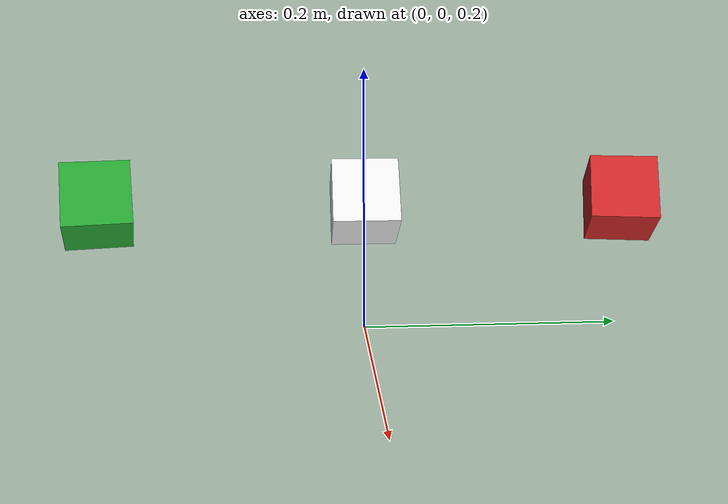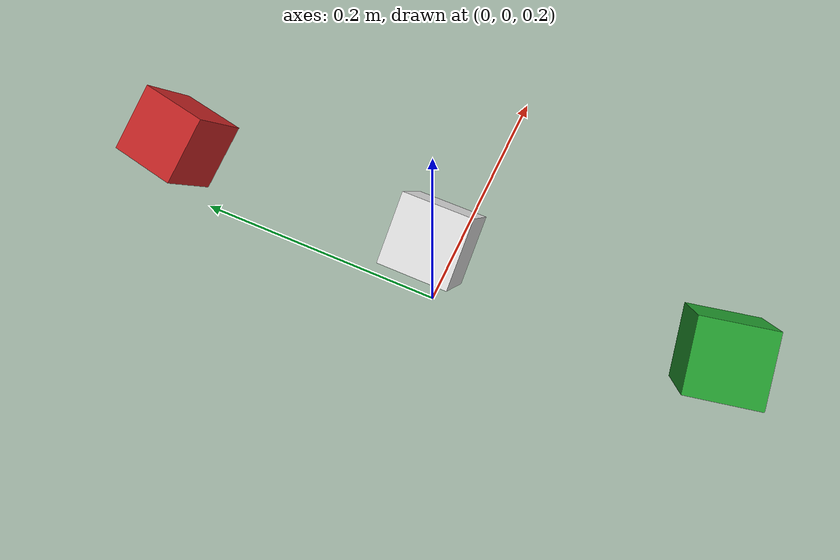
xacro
<?xml version="1.0"?>
<robot xmlns:xacro="http://www.ros.org/wiki/xacro" name="ur5_camera" >

  <!-- common stuff -->
  <xacro:include filename="$(find rl_stem_cell)/urdf/camera.gazebo.xacro" />
  <xacro:farbe />

  <!-- camera1 -->
  <link name="camera1_link">
    <collision>
      <origin xyz="0 0 0" rpy="0 0 0"/>
      <geometry>
    <box size="0.05 0.05 0.05"/>
      </geometry>
    </collision>

    <visual>
      <origin xyz="0 0 0" rpy="0 0 0"/>
      <geometry>
        <box size="0.05 0.05 0.05"/>
      </geometry>
      <color rgba="0.8 0.0 0.0 1.0"/>
    </visual>

    <inertial>
      <mass value="1e-5" />
      <origin xyz="0 0 0" rpy="0 0 0"/>
      <inertia ixx="1e-6" ixy="0" ixz="0" iyy="1e-6" iyz="0" izz="1e-6" />
    </inertial>
  </link>

  <!-- camera2 -->
  <link name="camera2_link">
    <collision>
      <origin xyz="0 0 0" rpy="0 0 0"/>
      <geometry>
    <box size="0.05 0.05 0.05"/>
      </geometry>
    </collision>

    <visual>
      <origin xyz="0 0 0" rpy="0 0 0"/>
      <geometry>
        <box size="0.05 0.05 0.05"/>
      </geometry>
      <color rgba="0.8 0.0 0.0 1.0"/>
    </visual>

    <inertial>
      <mass value="1e-5" />
      <origin xyz="0 0 0" rpy="0 0 0"/>
      <inertia ixx="1e-6" ixy="0" ixz="0" iyy="1e-6" iyz="0" izz="1e-6" />
    </inertial>
  </link>

  <!-- kinect -->
  <link name="kinect_link">
    <collision>
      <origin xyz="0 0 0" rpy="0 0 0"/>
      <geometry>
    <box size="0.05 0.05 0.05"/>
      </geometry>
    </collision>

    <visual>
      <origin xyz="0 0 0" rpy="0 0 0"/>
      <geometry>
        <box size="0.05 0.05 0.05"/>
      </geometry>
      <color rgba="0.8 0.0 0.0 1.0"/>
    </visual>

    <inertial>
      <mass value="1e-5" />
      <origin xyz="0 0 0" rpy="0 0 0"/>
      <inertia ixx="1e-6" ixy="0" ixz="0" iyy="1e-6" iyz="0" izz="1e-6" />
    </inertial>
  </link>

  <link name="world" />

  <joint name="world_joint1" type="fixed">
    <parent link="world" />
    <child link = "camera1_link" />
    <origin xyz="0.0 0.2 0.3" rpy="0.0 1.0 -.2" />
  </joint>

  <joint name="world_joint2" type="fixed">
    <parent link="world" />
    <child link = "camera2_link" />
    <origin xyz="0.0 -.2 0.3" rpy="0.0 1.0 0.2" />
  </joint>

  <joint name="world_joint3" type="fixed">
    <parent link="world" />
    <child link = "kinect_link" />
    <origin xyz="0.0 0.0 0.3" rpy="0.0 1.0 0.0" />
  </joint>

</robot>
